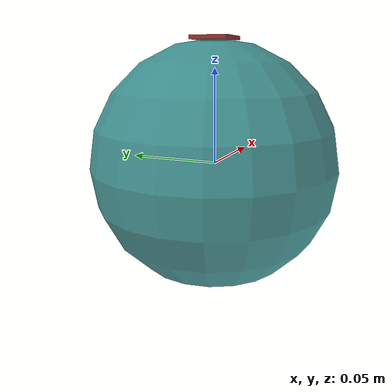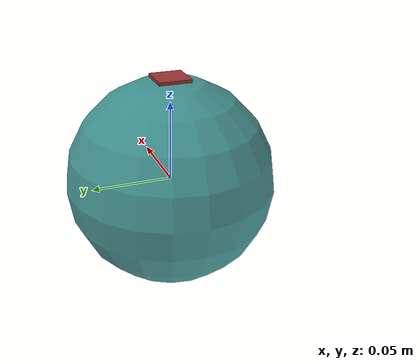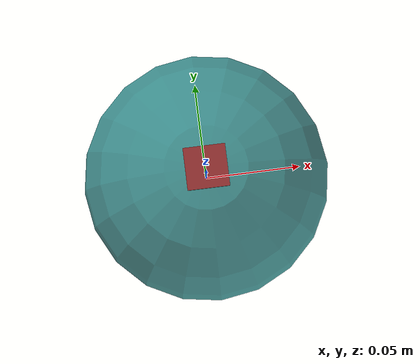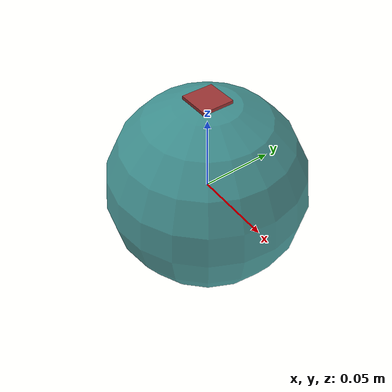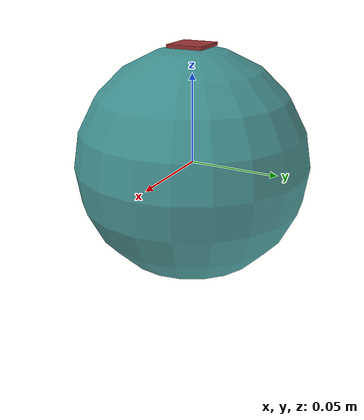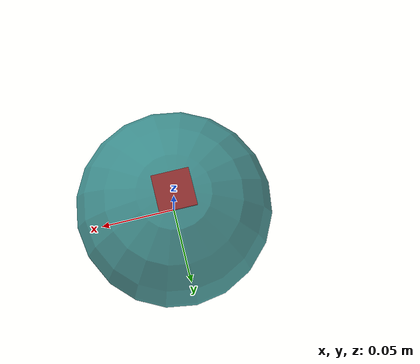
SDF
<?xml version="1.0"?>
<sdf version="1.7">
  <model name="sphere_r0.1m">
    <link name="sphere">
      <inertial>
        <mass>0.05</mass>
        <inertia>
          <ixx>5e-5</ixx>
          <ixy>0</ixy>
          <ixz>0</ixz>
          <iyy>5e-5</iyy>
          <iyz>0</iyz>
          <izz>5e-5</izz>
        </inertia>
      </inertial>

      <visual name="visual">
        <geometry>
          <sphere>
            <radius>0.065</radius>
          </sphere>
        </geometry>
        <material>
          <diffuse>0.1 0.5 0.5 0.8</diffuse>
        </material>
      </visual>

      <visual name="visual_2">
        <pose> 0 0 0.065 0 0 0 </pose>
        <geometry>
          <box>
           <size>0.02 0.02 0.002 </size>
          </box>
        </geometry>
        <material>
          <diffuse>0.6 0.2 0.2 0.9</diffuse>
        </material>
      </visual>

      <collision name="collision">
        <geometry>
          <sphere>
            <radius>0.065</radius>
          </sphere>
        </geometry>
        <surface>
          <friction>
            <ode>
              <mu>1.0</mu>
              <mu2>1.0</mu2>
            </ode>
          </friction>
        </surface>
      </collision>
    </link>
  </model>
</sdf>
